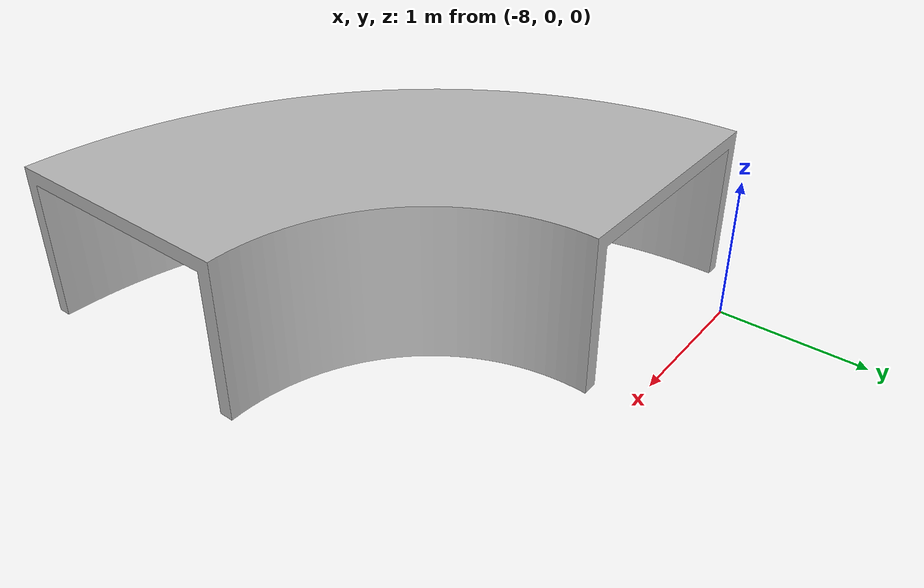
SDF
<?xml version="1.0" ?>
<sdf version="1.5">
  <model name="ca_tunnel">
    <static>true</static>
    <link name="link">
      <collision name="collision">
        <geometry>
          <mesh>
             <scale>1 1 1</scale>
             <uri>model://ca_tunnel/Meshes/tunnel_vis.dae</uri>
          </mesh>
        </geometry>
        <surface>
          <friction>
            <ode>
              <mu>100</mu>
              <mu2>50</mu2>
            </ode>
          </friction>
        </surface>
      </collision>
      <visual name="visual">
        <cast_shadows>true</cast_shadows>
        <geometry>
          <mesh>
             <scale>1 1 1</scale>
             <uri>model://ca_tunnel/Meshes/tunnel_vis.dae</uri>
          </mesh>
        </geometry>
      </visual>
    </link>

  </model>
</sdf>
